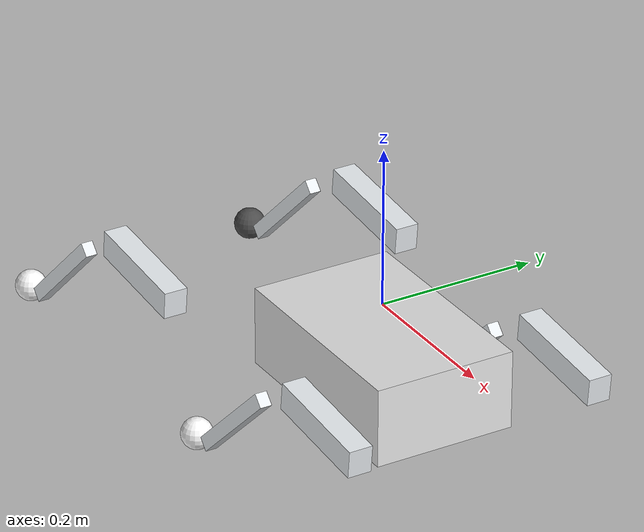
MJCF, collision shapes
<mujoco model="d1_description">
  <compiler angle="radian" meshdir="../meshes/"/>

  <asset>
    <mesh name="base" file="base.STL"/>
    <mesh name="LF_hip" file="LF_hip.STL"/>
    <mesh name="FL_thigh" file="FL_thigh.STL"/>
    <mesh name="FL_calf" file="FL_calf.STL"/>
    <mesh name="FL_foot" file="FL_foot.STL"/>
    <mesh name="RF_hip" file="RF_hip.STL"/>
    <mesh name="FR_thigh" file="FR_thigh.STL"/>
    <mesh name="FR_calf" file="FR_calf.STL"/>
    <mesh name="FR_foot" file="FR_foot.STL"/>
    <mesh name="LH_hip" file="LH_hip.STL"/>
    <mesh name="RL_thigh" file="RL_thigh.STL"/>
    <mesh name="RL_calf" file="RL_calf.STL"/>
    <mesh name="RL_foot" file="RL_foot.STL"/>
    <mesh name="RH_hip" file="RH_hip.STL"/>
    <mesh name="RR_thigh" file="RR_thigh.STL"/>
    <mesh name="RR_calf" file="RR_calf.STL"/>
    <mesh name="RR_foot" file="RR_foot.STL"/>
  </asset>

  <worldbody>
    <body name="base">
      <inertial pos="-0.001955 0.002743 -0.068608" quat="0.00498611 0.706314 0.00376067 0.707871" mass="6.8891" diaginertia="0.10308 0.0811058 0.0359755"/>
      <joint name="floating_base" type="free" limited="false" actuatorfrclimited="false"/>
      <geom type="mesh" contype="0" conaffinity="0" group="1" density="0" rgba="0.882353 0.882353 0.882353 1" mesh="base"/>
      <geom size="0.14 0.09 0.05" pos="0 0 -0.069779" type="box" rgba="0.882353 0.882353 0.882353 1"/>
      <body name="FL_hip" pos="0.16175 0.059997 -0.061498">
        <inertial pos="0.04756 -0.010434 -4.6e-05" quat="0.533889 0.530396 0.469192 0.462062" mass="0.706316" diaginertia="0.000537421 0.00044599 0.000400589"/>
        <joint name="FL_hip_joint" pos="0 0 0" axis="1 0 0" range="-1.57 1.57" actuatorfrcrange="-30 30"/>
        <geom type="mesh" contype="0" conaffinity="0" group="1" density="0" rgba="0.439216 0.439216 0.439216 1" mesh="LF_hip"/>
        <geom size="5e-05 5e-05 5e-05" type="box" rgba="0.439216 0.439216 0.439216 1"/>
        <body name="FL_thigh" pos="0.049998 0.019503 0">
          <inertial pos="-0.023554 0.050542 0.001956" quat="-0.0691461 0.692085 -0.223407 0.682881" mass="0.977146" diaginertia="0.00393691 0.00388566 0.000738421"/>
          <joint name="FL_thigh_joint" pos="0 0 0" axis="0 1 0" range="-1.57 2.4" actuatorfrcrange="-30 30"/>
          <geom type="mesh" contype="0" conaffinity="0" group="1" density="0" rgba="0.898039 0.917647 0.929412 1" mesh="FL_thigh"/>
          <geom size="0.075 0.015 0.0175" pos="-0.07 0.08 0.016" quat="0.99875 0 0.0499792 0" type="box" rgba="0.898039 0.917647 0.929412 1"/>
          <body name="FL_calf" pos="-0.2 0.07825 0">
            <inertial pos="-0.0285562 0.000197846 -0.0641588" quat="0.594858 0.384098 0.388599 0.589578" mass="0.270521" diaginertia="0.00625399 0.00602428 0.000252664"/>
            <joint name="FL_calf_joint" pos="0 0 0" axis="0 1 0" range="-2.25 0.5" actuatorfrcrange="-30 30"/>
            <geom type="mesh" contype="0" conaffinity="0" group="1" density="0" rgba="0.898039 0.917647 0.929412 1" mesh="FL_calf"/>
            <geom size="0.09 0.0075 0.009" pos="-0.08 0 -0.08" quat="0.928665 0 -0.37092 0" type="box" rgba="0.898039 0.917647 0.929412 1"/>
            <geom pos="-0.17362 0 -0.14312" type="mesh" contype="0" conaffinity="0" group="1" density="0" rgba="0.298039 0.298039 0.298039 1" mesh="FL_foot"/>
            <geom size="0.02" pos="-0.17362 0 -0.14312" rgba="0.298039 0.298039 0.298039 1"/>
          </body>
        </body>
      </body>
      <body name="FR_hip" pos="0.16175 -0.059983 -0.061498">
        <inertial pos="0.047555 0.010661 -4.6e-05" quat="0.462045 0.469209 0.530352 0.533933" mass="0.706316" diaginertia="0.000537421 0.00044699 0.000400589"/>
        <joint name="FR_hip_joint" pos="0 0 0" axis="1 0 0" range="-1.57 1.57" actuatorfrcrange="-30 30"/>
        <geom type="mesh" contype="0" conaffinity="0" group="1" density="0" rgba="0.439216 0.439216 0.439216 1" mesh="RF_hip"/>
        <geom size="5e-05 5e-05 5e-05" type="box" rgba="0.439216 0.439216 0.439216 1"/>
        <body name="FR_thigh" pos="0.050002 -0.019247 0">
          <inertial pos="-0.023592 -0.050542 0.001598" quat="0.0702149 0.68698 0.222233 0.688288" mass="0.977146" diaginertia="0.00393714 0.00388579 0.000738077"/>
          <joint name="FR_thigh_joint" pos="0 0 0" axis="0 1 0" range="-1.57 2.4" actuatorfrcrange="-30 30"/>
          <geom type="mesh" contype="0" conaffinity="0" group="1" density="0" rgba="0.898039 0.917647 0.929412 1" mesh="FR_thigh"/>
          <geom size="0.075 0.015 0.0175" pos="-0.07 -0.08 0.016" quat="0.99875 0 0.0499792 0" type="box" rgba="0.898039 0.917647 0.929412 1"/>
          <body name="FR_calf" pos="-0.19998 -0.07825 -0.003052">
            <inertial pos="-0.0285651 -0.000197846 -0.0635362" quat="0.590656 0.386862 0.382293 0.596083" mass="0.270521" diaginertia="0.00627627 0.00605544 0.000243781"/>
            <joint name="FR_calf_joint" pos="0 0 0" axis="0 1 0" range="-2.25 0.5" actuatorfrcrange="-30 30"/>
            <geom type="mesh" contype="0" conaffinity="0" group="1" density="0" rgba="0.898039 0.917647 0.929412 1" mesh="FR_calf"/>
            <geom size="0.09 0.0075 0.009" pos="-0.08 0 -0.08" quat="0.928665 0 -0.37092 0" type="box" rgba="0.898039 0.917647 0.929412 1"/>
            <geom pos="-0.17362 0 -0.14312" type="mesh" contype="0" conaffinity="0" group="1" density="0" rgba="1 1 1 1" mesh="FR_foot"/>
            <geom size="0.02" pos="-0.17362 0 -0.14312" rgba="1 1 1 1"/>
          </body>
        </body>
      </body>
      <body name="RL_hip" pos="-0.16175 0.059997 -0.061502">
        <inertial pos="-0.047555 -0.010434 -4.2e-05" quat="0.469192 0.462062 0.533889 0.530396" mass="0.706316" diaginertia="0.000537421 0.00044599 0.000400589"/>
        <joint name="RL_hip_joint" pos="0 0 0" axis="1 0 0" range="-1.57 1.57" actuatorfrcrange="-30 30"/>
        <geom type="mesh" contype="0" conaffinity="0" group="1" density="0" rgba="1 1 1 1" mesh="LH_hip"/>
        <geom size="5e-05 5e-05 5e-05" type="box" rgba="1 1 1 1"/>
        <body name="RL_thigh" pos="-0.050002 0.019503 0">
          <inertial pos="-0.023554 0.050542 0.001956" quat="-0.0691461 0.692085 -0.223407 0.682881" mass="0.977146" diaginertia="0.00393691 0.00388566 0.000738421"/>
          <joint name="RL_thigh_joint" pos="0 0 0" axis="0 1 0" range="-1.57 2.4" actuatorfrcrange="-30 30"/>
          <geom type="mesh" contype="0" conaffinity="0" group="1" density="0" rgba="0.898039 0.917647 0.929412 1" mesh="RL_thigh"/>
          <geom size="0.075 0.015 0.0175" pos="-0.07 0.08 0.016" quat="0.99875 0 0.0499792 0" type="box" rgba="0.898039 0.917647 0.929412 1"/>
          <body name="RL_calf" pos="-0.2 0.07825 0">
            <inertial pos="-0.0285562 0.000197846 -0.0641588" quat="0.594858 0.384098 0.388599 0.589578" mass="0.270521" diaginertia="0.00625399 0.00602428 0.000252664"/>
            <joint name="RL_calf_joint" pos="0 0 0" axis="0 1 0" range="-2.25 0.5" actuatorfrcrange="-30 30"/>
            <geom type="mesh" contype="0" conaffinity="0" group="1" density="0" rgba="0.898039 0.917647 0.929412 1" mesh="RL_calf"/>
            <geom size="0.09 0.0075 0.009" pos="-0.08 0 -0.08" quat="0.928665 0 -0.37092 0" type="box" rgba="0.898039 0.917647 0.929412 1"/>
            <geom pos="-0.17362 0 -0.14312" type="mesh" contype="0" conaffinity="0" group="1" density="0" rgba="0.298039 0.298039 0.298039 1" mesh="RL_foot"/>
            <geom size="0.02" pos="-0.17362 0 -0.14312" rgba="0.298039 0.298039 0.298039 1"/>
          </body>
        </body>
      </body>
      <body name="RR_hip" pos="-0.16175 -0.060003 -0.061502">
        <inertial pos="-0.047555 0.010661 4.6e-05" quat="0.533933 0.530352 0.469209 0.462045" mass="0.706316" diaginertia="0.000537421 0.00044699 0.000400589"/>
        <joint name="RR_hip_joint" pos="0 0 0" axis="1 0 0" range="-1.57 1.57" actuatorfrcrange="-30 30"/>
        <geom type="mesh" contype="0" conaffinity="0" group="1" density="0" rgba="0.439216 0.439216 0.439216 1" mesh="RH_hip"/>
        <geom size="5e-05 5e-05 5e-05" type="box" rgba="0.439216 0.439216 0.439216 1"/>
        <body name="RR_thigh" pos="-0.050002 -0.019247 0">
          <inertial pos="-0.023592 -0.050542 0.001598" quat="0.0702149 0.68698 0.222233 0.688288" mass="0.977146" diaginertia="0.00393714 0.00388579 0.000738077"/>
          <joint name="RR_thigh_joint" pos="0 0 0" axis="0 1 0" range="-1.57 2.4" actuatorfrcrange="-30 30"/>
          <geom type="mesh" contype="0" conaffinity="0" group="1" density="0" rgba="0.898039 0.917647 0.929412 1" mesh="RR_thigh"/>
          <geom size="0.075 0.015 0.0175" pos="-0.07 -0.08 0.016" quat="0.99875 0 0.0499792 0" type="box" rgba="0.898039 0.917647 0.929412 1"/>
          <body name="RR_calf" pos="-0.19998 -0.07825 -0.003052">
            <inertial pos="-0.0285646 -0.000197846 -0.063536" quat="0.590656 0.386862 0.382294 0.596083" mass="0.270521" diaginertia="0.00627622 0.00605539 0.000243781"/>
            <joint name="RR_calf_joint" pos="0 0 0" axis="0 1 0" range="-2.25 0.5" actuatorfrcrange="-30 30"/>
            <geom type="mesh" contype="0" conaffinity="0" group="1" density="0" rgba="0.898039 0.917647 0.929412 1" mesh="RR_calf"/>
            <geom size="0.09 0.0075 0.009" pos="-0.08 0 -0.08" quat="0.928665 0 -0.37092 0" type="box" rgba="0.898039 0.917647 0.929412 1"/>
            <geom pos="-0.173616 0 -0.143118" type="mesh" contype="0" conaffinity="0" group="1" density="0" rgba="1 1 1 1" mesh="RR_foot"/>
            <geom size="0.02" pos="-0.173616 0 -0.143118" rgba="1 1 1 1"/>
          </body>
        </body>
      </body>
    </body>
  </worldbody>
</mujoco>
